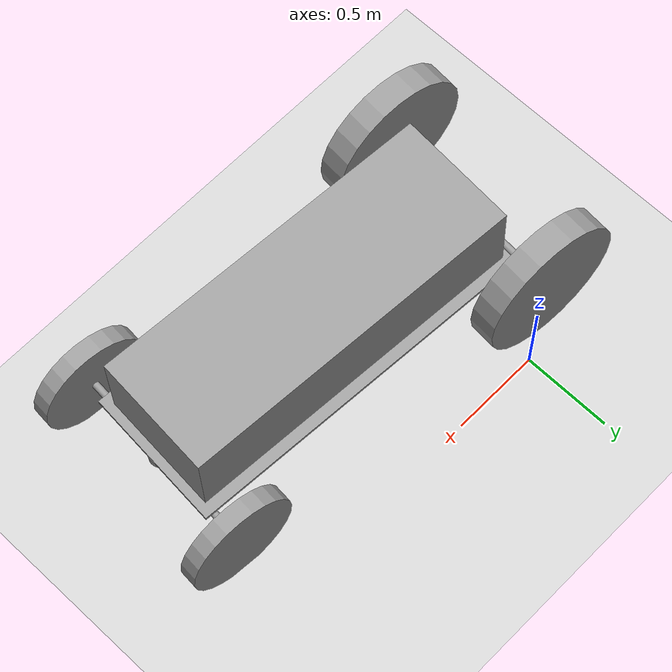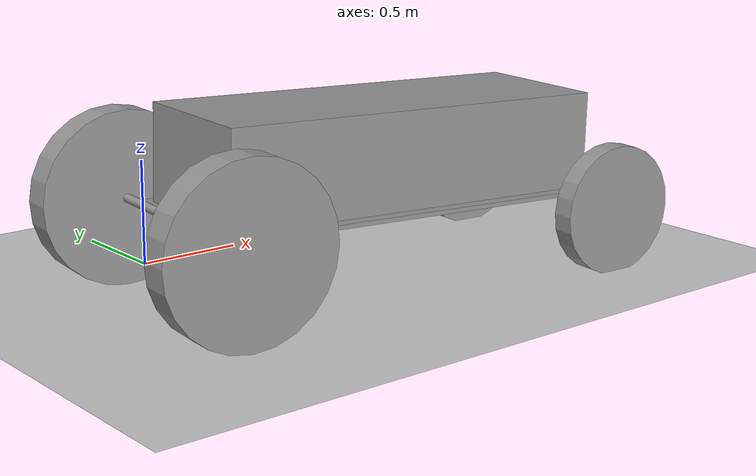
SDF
<sdf version="1.7">
 <world name="default">
  <light name="sun" type="directional">
   <pose>0 0 10 0 -0 0</pose>
   <diffuse>0.8 0.8 0.8 1</diffuse>
   <specular>0.2 0.2 0.2 1</specular>
   <attenuation>
    <range>1000</range>
    <constant>0.9</constant>
    <linear>0.01</linear>
    <quadratic>0.001</quadratic>
   </attenuation>
   <direction>-0.5 0.1 -0.9</direction>
   <spot><inner_angle>0</inner_angle><outer_angle>0</outer_angle><falloff>0</falloff></spot>
  </light>
  <model name="ground_plane">
   <static>1</static>
   <link name="link">
    <collision name="collision">
     <geometry><plane><normal>0 0 1</normal><size>100 100</size></plane></geometry>
     <surface>
      <contact><collide_bitmask>65535</collide_bitmask></contact>
      <friction><ode><mu>100</mu><mu2>50</mu2></ode></friction>
     </surface>
    </collision>
    <visual name="visual">
     <cast_shadows>0</cast_shadows>
     <geometry><plane><normal>0 0 1</normal><size>100 100</size></plane></geometry>
     <material>
      <script><uri>file://media/materials/scripts/gazebo.material</uri><name>Gazebo/Grey</name></script>
     </material>
    </visual>
   </link>
  </model>
  <gravity>0 0 -9.8</gravity>
  <magnetic_field>6e-06 2.3e-05 -4.2e-05</magnetic_field>
  <atmosphere type="adiabatic"/>
  <physics type="ode">
   <max_step_size>0.001</max_step_size>
   <real_time_factor>1</real_time_factor>
   <real_time_update_rate>1000</real_time_update_rate>
  </physics>
  <scene><ambient>0.4 0.4 0.4 1</ambient><background>0.7 0.7 0.7 1</background><shadows>1</shadows></scene>
  <spherical_coordinates>
   <surface_model>EARTH_WGS84</surface_model>
   <latitude_deg>0</latitude_deg>
   <longitude_deg>0</longitude_deg>
   <elevation>0</elevation>
   <heading_deg>0</heading_deg>
  </spherical_coordinates>
  <model name="cart">
   <link name="link_0">
    <inertial>
     <mass>1</mass>
     <inertia>
      <ixx>0.0533667</ixx>
      <ixy>0</ixy>
      <ixz>0</ixz>
      <iyy>0.333367</iyy>
      <iyz>0</iyz>
      <izz>0.386667</izz>
     </inertia>
    </inertial>
    <pose>-0.25417 0.166804 0.035181 0 -0 0</pose>
    <visual name="visual">
     <geometry><box><size>2 0.8 0.02</size></box></geometry>
     <material>
      <lighting>1</lighting>
      <script><uri>file://media/materials/scripts/gazebo.material</uri><name>Gazebo/Grey</name></script>
      <shader type="pixel"><normal_map>__default__</normal_map></shader>
      <ambient>0.3 0.3 0.3 1</ambient>
      <diffuse>0.7 0.7 0.7 1</diffuse>
      <specular>0.01 0.01 0.01 1</specular>
      <emissive>0 0 0 1</emissive>
     </material>
    </visual>
    <collision name="collision">
     <geometry><box><size>2 0.8 0.02</size></box></geometry>
     <surface>
      <friction>
       <ode><mu>1</mu><mu2>1</mu2><fdir1>0 0 0</fdir1><slip1>0</slip1><slip2>0</slip2></ode>
       <torsional>
        <coefficient>1</coefficient>
        <patch_radius>0</patch_radius>
        <surface_radius>0</surface_radius>
        <use_patch_radius>1</use_patch_radius>
        <ode><slip>0</slip></ode>
       </torsional>
      </friction>
      <bounce><restitution_coefficient>0</restitution_coefficient><threshold>1e+06</threshold></bounce>
      <contact>
       <collide_without_contact>0</collide_without_contact>
       <collide_without_contact_bitmask>1</collide_without_contact_bitmask>
       <collide_bitmask>1</collide_bitmask>
       <ode>
        <soft_cfm>0</soft_cfm>
        <soft_erp>0.2</soft_erp>
        <kp>1e+13</kp>
        <kd>1</kd>
        <max_vel>0.01</max_vel>
        <min_depth>0</min_depth>
       </ode>
       <bullet>
        <split_impulse>1</split_impulse>
        <split_impulse_penetration_threshold>-0.01</split_impulse_penetration_threshold>
        <soft_cfm>0</soft_cfm>
        <soft_erp>0.2</soft_erp>
        <kp>1e+13</kp>
        <kd>1</kd>
       </bullet>
      </contact>
     </surface>
    </collision>
   </link>
   <link name="link_0_0">
    <inertial>
     <mass>0.000688057</mass>
     <inertia>
      <ixx>8.16389e-07</ixx>
      <ixy>0</ixy>
      <ixz>0</ixz>
      <iyy>8.16389e-07</iyy>
      <iyz>0</iyz>
      <izz>1.43917e-06</izz>
     </inertia>
    </inertial>
    <pose>-1.1956 0.1668 0.015181 -9.8e-05 0.046583 -2.8e-05</pose>
    <visual name="visual">
     <geometry><cylinder><radius>0.0646783</radius><length>0.0410892</length></cylinder></geometry>
     <material>
      <lighting>1</lighting>
      <script><uri>file://media/materials/scripts/gazebo.material</uri><name>Gazebo/Grey</name></script>
      <shader type="pixel"/>
      <emissive>0 0 0 1</emissive>
     </material>
    </visual>
    <collision name="collision">
     <geometry><cylinder><radius>0.064678</radius><length>0.041089</length></cylinder></geometry>
     <surface>
      <friction>
       <ode><mu>1</mu><mu2>1</mu2><fdir1>0 0 0</fdir1><slip1>0</slip1><slip2>0</slip2></ode>
       <torsional>
        <coefficient>1</coefficient>
        <patch_radius>0</patch_radius>
        <surface_radius>0</surface_radius>
        <use_patch_radius>1</use_patch_radius>
        <ode><slip>0</slip></ode>
       </torsional>
      </friction>
      <bounce><restitution_coefficient>0</restitution_coefficient><threshold>1e+06</threshold></bounce>
      <contact>
       <collide_without_contact>0</collide_without_contact>
       <collide_without_contact_bitmask>1</collide_without_contact_bitmask>
       <collide_bitmask>1</collide_bitmask>
       <ode>
        <soft_cfm>0</soft_cfm>
        <soft_erp>0.2</soft_erp>
        <kp>1e+13</kp>
        <kd>1</kd>
        <max_vel>0.01</max_vel>
        <min_depth>0</min_depth>
       </ode>
       <bullet>
        <split_impulse>1</split_impulse>
        <split_impulse_penetration_threshold>-0.01</split_impulse_penetration_threshold>
        <soft_cfm>0</soft_cfm>
        <soft_erp>0.2</soft_erp>
        <kp>1e+13</kp>
        <kd>1</kd>
       </bullet>
      </contact>
     </surface>
    </collision>
   </link>
   <link name="link_0_1">
    <inertial>
     <mass>80</mass>
     <inertia><ixx>4.52345</ixx><ixy>0</ixy><ixz>0</ixz><iyy>25.8377</iyy><iyz>0</iyz><izz>27.4402</izz></inertia>
    </inertial>
    <pose>-0.249033 0.166826 0.258067 0 -0 0</pose>
    <visual name="visual">
     <geometry><box><size>1.91222 0.677828 0.468045</size></box></geometry>
     <material>
      <lighting>1</lighting>
      <script><uri>file://media/materials/scripts/gazebo.material</uri><name>Gazebo/Grey</name></script>
      <shader type="pixel"><normal_map>__default__</normal_map></shader>
      <emissive>0 0 0 1</emissive>
     </material>
    </visual>
    <collision name="collision">
     <geometry><box><size>1.91222 0.677828 0.468045</size></box></geometry>
     <surface>
      <friction>
       <ode><mu>1</mu><mu2>1</mu2><fdir1>0 0 0</fdir1><slip1>0</slip1><slip2>0</slip2></ode>
       <torsional>
        <coefficient>1</coefficient>
        <patch_radius>0</patch_radius>
        <surface_radius>0</surface_radius>
        <use_patch_radius>1</use_patch_radius>
        <ode><slip>0</slip></ode>
       </torsional>
      </friction>
      <bounce><restitution_coefficient>0</restitution_coefficient><threshold>1e+06</threshold></bounce>
      <contact>
       <collide_without_contact>0</collide_without_contact>
       <collide_without_contact_bitmask>1</collide_without_contact_bitmask>
       <collide_bitmask>1</collide_bitmask>
       <ode>
        <soft_cfm>0</soft_cfm>
        <soft_erp>0.2</soft_erp>
        <kp>1e+13</kp>
        <kd>1</kd>
        <max_vel>0.01</max_vel>
        <min_depth>0</min_depth>
       </ode>
       <bullet>
        <split_impulse>1</split_impulse>
        <split_impulse_penetration_threshold>-0.01</split_impulse_penetration_threshold>
        <soft_cfm>0</soft_cfm>
        <soft_erp>0.2</soft_erp>
        <kp>1e+13</kp>
        <kd>1</kd>
       </bullet>
      </contact>
     </surface>
    </collision>
   </link>
   <link name="link_1">
    <inertial>
     <mass>1</mass>
     <inertia><ixx>0.145833</ixx><ixy>0</ixy><ixz>0</ixz><iyy>0.145833</iyy><iyz>0</iyz><izz>0.125</izz></inertia>
    </inertial>
    <pose>0.765833 0.166795 0.040181 1.5707 -0 0</pose>
    <visual name="visual">
     <geometry><cylinder><radius>0.02</radius><length>1.15</length></cylinder></geometry>
     <material>
      <lighting>1</lighting>
      <script><uri>file://media/materials/scripts/gazebo.material</uri><name>Gazebo/Grey</name></script>
      <shader type="pixel"><normal_map>__default__</normal_map></shader>
      <ambient>0.3 0.3 0.3 1</ambient>
      <diffuse>0.7 0.7 0.7 1</diffuse>
      <specular>0.01 0.01 0.01 1</specular>
      <emissive>0 0 0 1</emissive>
     </material>
    </visual>
    <collision name="collision">
     <geometry><cylinder><radius>0.02</radius><length>1.15</length></cylinder></geometry>
     <surface>
      <friction>
       <ode><mu>1</mu><mu2>1</mu2><fdir1>0 0 0</fdir1><slip1>0</slip1><slip2>0</slip2></ode>
       <torsional>
        <coefficient>1</coefficient>
        <patch_radius>0</patch_radius>
        <surface_radius>0</surface_radius>
        <use_patch_radius>1</use_patch_radius>
        <ode><slip>0</slip></ode>
       </torsional>
      </friction>
      <bounce><restitution_coefficient>0</restitution_coefficient><threshold>1e+06</threshold></bounce>
      <contact>
       <collide_without_contact>0</collide_without_contact>
       <collide_without_contact_bitmask>1</collide_without_contact_bitmask>
       <collide_bitmask>1</collide_bitmask>
       <ode>
        <soft_cfm>0</soft_cfm>
        <soft_erp>0.2</soft_erp>
        <kp>1e+13</kp>
        <kd>1</kd>
        <max_vel>0.01</max_vel>
        <min_depth>0</min_depth>
       </ode>
       <bullet>
        <split_impulse>1</split_impulse>
        <split_impulse_penetration_threshold>-0.01</split_impulse_penetration_threshold>
        <soft_cfm>0</soft_cfm>
        <soft_erp>0.2</soft_erp>
        <kp>1e+13</kp>
        <kd>1</kd>
       </bullet>
      </contact>
     </surface>
    </collision>
   </link>
   <link name="link_1_clone">
    <inertial>
     <mass>1</mass>
     <inertia><ixx>0.145833</ixx><ixy>0</ixy><ixz>0</ixz><iyy>0.145833</iyy><iyz>0</iyz><izz>0.125</izz></inertia>
    </inertial>
    <pose>-1.19699 0.166797 -0.014786 1.57059 -2e-06 2e-06</pose>
    <self_collide>1</self_collide>
    <visual name="visual">
     <geometry><cylinder><radius>0.02</radius><length>1</length></cylinder></geometry>
     <material>
      <lighting>1</lighting>
      <script><uri>file://media/materials/scripts/gazebo.material</uri><name>Gazebo/Grey</name></script>
      <shader type="pixel"><normal_map>__default__</normal_map></shader>
      <ambient>0.3 0.3 0.3 1</ambient>
      <diffuse>0.7 0.7 0.7 1</diffuse>
      <specular>0.01 0.01 0.01 1</specular>
      <emissive>0 0 0 1</emissive>
     </material>
    </visual>
    <collision name="collision">
     <geometry><cylinder><radius>0.02</radius><length>1</length></cylinder></geometry>
     <surface>
      <friction>
       <ode><mu>1</mu><mu2>1</mu2><fdir1>0 0 0</fdir1><slip1>0</slip1><slip2>0</slip2></ode>
       <torsional>
        <coefficient>1</coefficient>
        <patch_radius>0</patch_radius>
        <surface_radius>0</surface_radius>
        <use_patch_radius>1</use_patch_radius>
        <ode><slip>0</slip></ode>
       </torsional>
      </friction>
      <bounce><restitution_coefficient>0</restitution_coefficient><threshold>1e+06</threshold></bounce>
      <contact>
       <collide_without_contact>0</collide_without_contact>
       <collide_without_contact_bitmask>1</collide_without_contact_bitmask>
       <collide_bitmask>1</collide_bitmask>
       <ode>
        <soft_cfm>0</soft_cfm>
        <soft_erp>0.2</soft_erp>
        <kp>1e+13</kp>
        <kd>1</kd>
        <max_vel>0.01</max_vel>
        <min_depth>0</min_depth>
       </ode>
       <bullet>
        <split_impulse>1</split_impulse>
        <split_impulse_penetration_threshold>-0.01</split_impulse_penetration_threshold>
        <soft_cfm>0</soft_cfm>
        <soft_erp>0.2</soft_erp>
        <kp>1e+13</kp>
        <kd>1</kd>
       </bullet>
      </contact>
     </surface>
    </collision>
   </link>
   <link name="link_2">
    <inertial>
     <mass>1</mass>
     <inertia><ixx>0.041875</ixx><ixy>0</ixy><ixz>0</ixz><iyy>0.041875</iyy><iyz>0</iyz><izz>0.08</izz></inertia>
    </inertial>
    <pose>0.765833 0.716795 0.040128 1.5707 -0 0</pose>
    <visual name="visual">
     <geometry><cylinder><radius>0.4</radius><length>0.15</length></cylinder></geometry>
     <material>
      <lighting>1</lighting>
      <script><uri>file://media/materials/scripts/gazebo.material</uri><name>Gazebo/Grey</name></script>
      <shader type="pixel"><normal_map>__default__</normal_map></shader>
      <ambient>0.3 0.3 0.3 1</ambient>
      <diffuse>0.7 0.7 0.7 1</diffuse>
      <specular>0.01 0.01 0.01 1</specular>
      <emissive>0 0 0 1</emissive>
     </material>
    </visual>
    <collision name="collision">
     <geometry><cylinder><radius>0.4</radius><length>0.15</length></cylinder></geometry>
     <surface>
      <friction>
       <ode><mu>1</mu><mu2>1</mu2><fdir1>0 0 0</fdir1><slip1>0</slip1><slip2>0</slip2></ode>
       <torsional>
        <coefficient>1</coefficient>
        <patch_radius>0</patch_radius>
        <surface_radius>0</surface_radius>
        <use_patch_radius>1</use_patch_radius>
        <ode><slip>0</slip></ode>
       </torsional>
      </friction>
      <bounce><restitution_coefficient>0</restitution_coefficient><threshold>1e+06</threshold></bounce>
      <contact>
       <collide_without_contact>0</collide_without_contact>
       <collide_without_contact_bitmask>1</collide_without_contact_bitmask>
       <collide_bitmask>1</collide_bitmask>
       <ode>
        <soft_cfm>0</soft_cfm>
        <soft_erp>0.2</soft_erp>
        <kp>1e+13</kp>
        <kd>1</kd>
        <max_vel>0.01</max_vel>
        <min_depth>0</min_depth>
       </ode>
       <bullet>
        <split_impulse>1</split_impulse>
        <split_impulse_penetration_threshold>-0.01</split_impulse_penetration_threshold>
        <soft_cfm>0</soft_cfm>
        <soft_erp>0.2</soft_erp>
        <kp>1e+13</kp>
        <kd>1</kd>
       </bullet>
      </contact>
     </surface>
    </collision>
   </link>
   <link name="link_2_clone">
    <inertial>
     <mass>1</mass>
     <inertia><ixx>0.145833</ixx><ixy>0</ixy><ixz>0</ixz><iyy>0.145833</iyy><iyz>0</iyz><izz>0.125</izz></inertia>
    </inertial>
    <pose>0.765833 -0.383205 0.040234 1.5707 -0 0</pose>
    <visual name="visual">
     <geometry><cylinder><radius>0.4</radius><length>0.15</length></cylinder></geometry>
     <material>
      <lighting>1</lighting>
      <script><uri>file://media/materials/scripts/gazebo.material</uri><name>Gazebo/Grey</name></script>
      <shader type="pixel"><normal_map>__default__</normal_map></shader>
      <ambient>0.3 0.3 0.3 1</ambient>
      <diffuse>0.7 0.7 0.7 1</diffuse>
      <specular>0.01 0.01 0.01 1</specular>
      <emissive>0 0 0 1</emissive>
     </material>
    </visual>
    <collision name="collision">
     <geometry><cylinder><radius>0.4</radius><length>0.15</length></cylinder></geometry>
     <surface>
      <friction>
       <ode><mu>1</mu><mu2>1</mu2><fdir1>0 0 0</fdir1><slip1>0</slip1><slip2>0</slip2></ode>
       <torsional>
        <coefficient>1</coefficient>
        <patch_radius>0</patch_radius>
        <surface_radius>0</surface_radius>
        <use_patch_radius>1</use_patch_radius>
        <ode><slip>0</slip></ode>
       </torsional>
      </friction>
      <bounce><restitution_coefficient>0</restitution_coefficient><threshold>1e+06</threshold></bounce>
      <contact>
       <collide_without_contact>0</collide_without_contact>
       <collide_without_contact_bitmask>1</collide_without_contact_bitmask>
       <collide_bitmask>1</collide_bitmask>
       <ode>
        <soft_cfm>0</soft_cfm>
        <soft_erp>0.2</soft_erp>
        <kp>1e+13</kp>
        <kd>1</kd>
        <max_vel>0.01</max_vel>
        <min_depth>0</min_depth>
       </ode>
       <bullet>
        <split_impulse>1</split_impulse>
        <split_impulse_penetration_threshold>-0.01</split_impulse_penetration_threshold>
        <soft_cfm>0</soft_cfm>
        <soft_erp>0.2</soft_erp>
        <kp>1e+13</kp>
        <kd>1</kd>
       </bullet>
      </contact>
     </surface>
    </collision>
   </link>
   <link name="link_2_clone_0">
    <inertial>
     <mass>5</mass>
     <inertia><ixx>0.209375</ixx><ixy>0</ixy><ixz>0</ixz><iyy>0.209375</iyy><iyz>0</iyz><izz>0.4</izz></inertia>
    </inertial>
    <pose>-1.19699 -0.383203 -0.014676 1.57067 -1e-06 1e-06</pose>
    <self_collide>1</self_collide>
    <visual name="visual">
     <geometry><cylinder><radius>0.3</radius><length>0.1</length></cylinder></geometry>
     <material>
      <lighting>1</lighting>
      <script><uri>file://media/materials/scripts/gazebo.material</uri><name>Gazebo/Grey</name></script>
      <shader type="pixel"><normal_map>__default__</normal_map></shader>
      <ambient>0.3 0.3 0.3 1</ambient>
      <diffuse>0.7 0.7 0.7 1</diffuse>
      <specular>0.01 0.01 0.01 1</specular>
      <emissive>0 0 0 1</emissive>
     </material>
    </visual>
    <collision name="collision">
     <geometry><cylinder><radius>0.3</radius><length>0.1</length></cylinder></geometry>
     <surface>
      <friction>
       <ode><mu>1</mu><mu2>1</mu2><fdir1>0 0 0</fdir1><slip1>0</slip1><slip2>0</slip2></ode>
       <torsional>
        <coefficient>1</coefficient>
        <patch_radius>0</patch_radius>
        <surface_radius>0</surface_radius>
        <use_patch_radius>1</use_patch_radius>
        <ode><slip>0</slip></ode>
       </torsional>
      </friction>
      <bounce><restitution_coefficient>0</restitution_coefficient><threshold>1e+06</threshold></bounce>
      <contact>
       <collide_without_contact>0</collide_without_contact>
       <collide_without_contact_bitmask>1</collide_without_contact_bitmask>
       <collide_bitmask>1</collide_bitmask>
       <ode>
        <soft_cfm>0</soft_cfm>
        <soft_erp>0.2</soft_erp>
        <kp>1e+13</kp>
        <kd>1</kd>
        <max_vel>0.01</max_vel>
        <min_depth>0</min_depth>
       </ode>
       <bullet>
        <split_impulse>1</split_impulse>
        <split_impulse_penetration_threshold>-0.01</split_impulse_penetration_threshold>
        <soft_cfm>0</soft_cfm>
        <soft_erp>0.2</soft_erp>
        <kp>1e+13</kp>
        <kd>1</kd>
       </bullet>
      </contact>
     </surface>
    </collision>
   </link>
   <link name="link_2_clone_0_clone">
    <inertial>
     <mass>5</mass>
     <inertia><ixx>0.209375</ixx><ixy>0</ixy><ixz>0</ixz><iyy>0.209375</iyy><iyz>0</iyz><izz>0.4</izz></inertia>
    </inertial>
    <pose>-1.19699 0.716797 -0.014897 1.5707 -0 1e-06</pose>
    <self_collide>1</self_collide>
    <visual name="visual">
     <geometry><cylinder><radius>0.3</radius><length>0.1</length></cylinder></geometry>
     <material>
      <lighting>1</lighting>
      <script><uri>file://media/materials/scripts/gazebo.material</uri><name>Gazebo/Grey</name></script>
      <shader type="pixel"><normal_map>__default__</normal_map></shader>
      <ambient>0.3 0.3 0.3 1</ambient>
      <diffuse>0.7 0.7 0.7 1</diffuse>
      <specular>0.01 0.01 0.01 1</specular>
      <emissive>0 0 0 1</emissive>
     </material>
    </visual>
    <collision name="collision">
     <geometry><cylinder><radius>0.3</radius><length>0.1</length></cylinder></geometry>
     <surface>
      <friction>
       <ode><mu>1</mu><mu2>1</mu2><fdir1>0 0 0</fdir1><slip1>0</slip1><slip2>0</slip2></ode>
       <torsional>
        <coefficient>1</coefficient>
        <patch_radius>0</patch_radius>
        <surface_radius>0</surface_radius>
        <use_patch_radius>1</use_patch_radius>
        <ode><slip>0</slip></ode>
       </torsional>
      </friction>
      <bounce><restitution_coefficient>0</restitution_coefficient><threshold>1e+06</threshold></bounce>
      <contact>
       <collide_without_contact>0</collide_without_contact>
       <collide_without_contact_bitmask>1</collide_without_contact_bitmask>
       <collide_bitmask>1</collide_bitmask>
       <ode>
        <soft_cfm>0</soft_cfm>
        <soft_erp>0.2</soft_erp>
        <kp>1e+13</kp>
        <kd>1</kd>
        <max_vel>0.01</max_vel>
        <min_depth>0</min_depth>
       </ode>
       <bullet>
        <split_impulse>1</split_impulse>
        <split_impulse_penetration_threshold>-0.01</split_impulse_penetration_threshold>
        <soft_cfm>0</soft_cfm>
        <soft_erp>0.2</soft_erp>
        <kp>1e+13</kp>
        <kd>1</kd>
       </bullet>
      </contact>
     </surface>
    </collision>
   </link>
   <joint name="link_0_0_JOINT_2" type="revolute">
    <parent>link_0_0</parent>
    <child>link_1_clone</child>
    <axis>
     <xyz>0 0 1</xyz>
     <limit>
      <lower>-1.79769e+308</lower>
      <upper>1.79769e+308</upper>
      <effort>-1</effort>
      <velocity>-1</velocity>
     </limit>
     <dynamics>
      <spring_reference>0</spring_reference>
      <spring_stiffness>0</spring_stiffness>
      <damping>0</damping>
      <friction>1</friction>
     </dynamics>
    </axis>
    <physics>
     <ode><limit><cfm>0</cfm><erp>0.2</erp></limit><suspension><cfm>0</cfm><erp>0.2</erp></suspension></ode>
    </physics>
   </joint>
   <joint name="link_0_JOINT_0_0" type="fixed">
    <parent>link_0</parent>
    <child>link_0_1</child>
    <physics>
     <ode><limit><cfm>0</cfm><erp>0.2</erp></limit><suspension><cfm>0</cfm><erp>0.2</erp></suspension></ode>
    </physics>
   </joint>
   <joint name="link_0_JOINT_0" type="revolute">
    <parent>link_0</parent>
    <child>link_0_0</child>
    <axis>
     <xyz>0 0 1</xyz>
     <limit><lower>-99999</lower><upper>99999</upper><effort>-1</effort><velocity>-1</velocity></limit>
     <dynamics>
      <spring_reference>0</spring_reference>
      <spring_stiffness>0</spring_stiffness>
      <damping>0</damping>
      <friction>0</friction>
     </dynamics>
    </axis>
    <physics>
     <ode><limit><cfm>0</cfm><erp>0.2</erp></limit><suspension><cfm>0</cfm><erp>0.2</erp></suspension></ode>
    </physics>
   </joint>
   <joint name="link_0_JOINT_12" type="revolute">
    <parent>link_0</parent>
    <child>link_1</child>
    <axis>
     <xyz>0 0 1</xyz>
     <limit>
      <lower>-1.79769e+308</lower>
      <upper>1.79769e+308</upper>
      <effort>-1</effort>
      <velocity>-1</velocity>
     </limit>
     <dynamics>
      <spring_reference>0</spring_reference>
      <spring_stiffness>0</spring_stiffness>
      <damping>0</damping>
      <friction>1</friction>
     </dynamics>
    </axis>
    <physics>
     <ode><limit><cfm>0</cfm><erp>0.2</erp></limit><suspension><cfm>0</cfm><erp>0.2</erp></suspension></ode>
    </physics>
   </joint>
   <joint name="link_1_JOINT_7" type="fixed">
    <parent>link_1</parent>
    <child>link_2_clone</child>
    <physics>
     <ode><limit><cfm>0</cfm><erp>0.2</erp></limit><suspension><cfm>0</cfm><erp>0.2</erp></suspension></ode>
    </physics>
   </joint>
   <joint name="link_1_JOINT_8" type="fixed">
    <parent>link_1</parent>
    <child>link_2</child>
    <physics>
     <ode><limit><cfm>0</cfm><erp>0.2</erp></limit><suspension><cfm>0</cfm><erp>0.2</erp></suspension></ode>
    </physics>
   </joint>
   <joint name="link_1_clone_JOINT_3" type="fixed">
    <parent>link_1_clone</parent>
    <child>link_2_clone_0</child>
    <physics>
     <ode><limit><cfm>0</cfm><erp>0.2</erp></limit><suspension><cfm>0</cfm><erp>0.2</erp></suspension></ode>
    </physics>
   </joint>
   <joint name="link_1_clone_JOINT_4" type="fixed">
    <parent>link_1_clone</parent>
    <child>link_2_clone_0_clone</child>
    <physics>
     <ode><limit><cfm>0</cfm><erp>0.2</erp></limit><suspension><cfm>0</cfm><erp>0.2</erp></suspension></ode>
    </physics>
   </joint>
   <static>0</static>
   <pose>0.527778 -0.588811 0.335775 9e-06 -0.031192 3.06329</pose>
  </model>
 </world>
</sdf>
